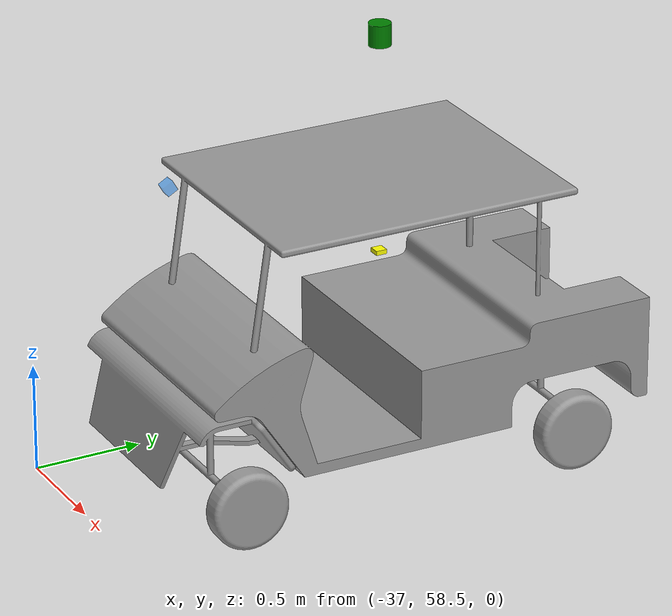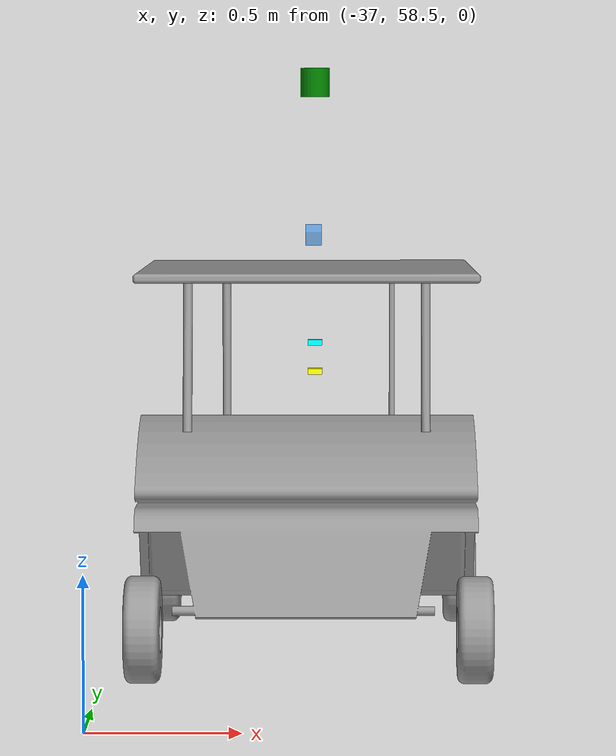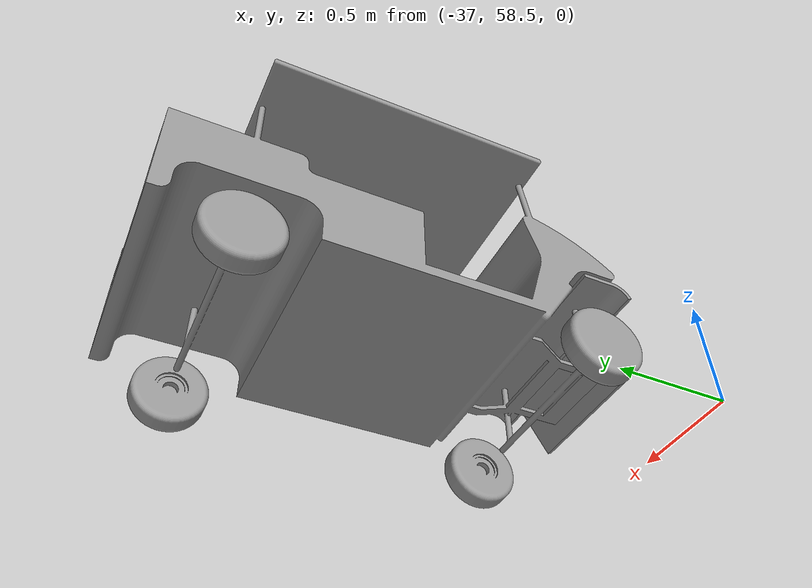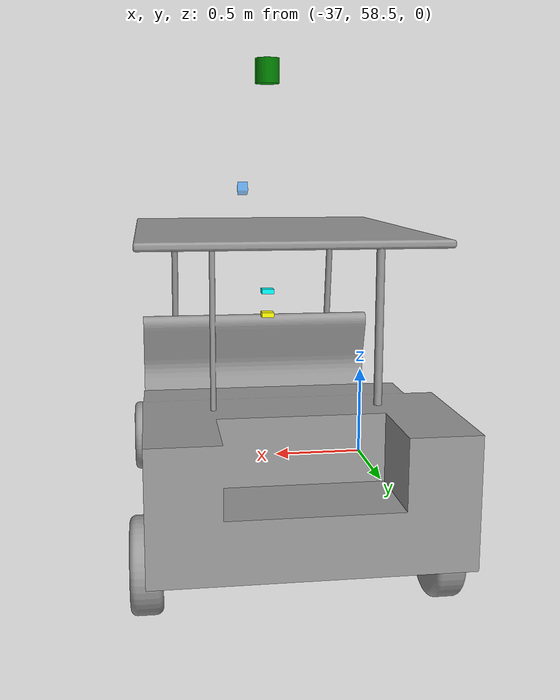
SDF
<?xml version='1.0'?>
<sdf version='1.7'>
  <model name='yoda_car'>
   <pose>-36.282906 59.722023 0.291155 0 0 -1.57854</pose>
    <link name='link_1'>
      <inertial>
        <mass>1</mass>
        <inertia>
          <ixx>0.166667</ixx>
          <ixy>0</ixy>
          <ixz>0</ixz>
          <iyy>0.166667</iyy>
          <iyz>0</iyz>
          <izz>0.166667</izz>
        </inertia>
        <pose>0 0 0 0 -0 0</pose>
      </inertial>
      <pose>-0.094832 0.015297 0.069631 0 -0 0</pose>
      <sensor name='gps_sensor' type='gps'>
        <pose>0 0 0.8 0 -0 0</pose>
        <always_on>1</always_on>
        <update_rate>2</update_rate>
        <gps>
          <position_sensing>
            <horizontal>
              <noise type='gaussian'>
                <mean>0</mean>
                <stddev>0.01</stddev>
              </noise>
            </horizontal>
            <vertical>
              <noise type='gaussian'>
                <mean>0</mean>
                <stddev>0.01</stddev>
              </noise>
            </vertical>
          </position_sensing>
        </gps>
        <plugin name='gps_plugin' filename='libgazebo_ros_gps_sensor.so'>
          <ros>
            <namespace>/yoda</namespace>
            <remapping>~/out:=gps/fix</remapping>
          </ros>
          <frame_name>gps_link</frame_name>
        </plugin>
      </sensor>
      <sensor name="camera_sensor" type="camera">
        <pose>1.0 0 1.2 0 0.523599 0</pose> <!-- Pose burada olmalı -->
        <update_rate>10</update_rate>
        <camera>
          <horizontal_fov>2.094</horizontal_fov> <!-- 120 derece görüş açısı -->
          <image>
            <width>1920</width>
            <height>1080</height>
            <format>R8G8B8</format>
          </image>
          <clip>
            <near>0.02</near>
            <far>100</far>
          </clip>
        </camera>
        <plugin name="ros2_camera_plugin" filename="libgazebo_ros_camera.so">
          <ros>
            <namespace>/yoda</namespace>
            <remapping>image_raw:=/yoda/camera/image_raw</remapping>
          </ros>
          <camera_name>camera</camera_name>
          <frame_name>camera_link</frame_name>
        </plugin>
      </sensor>
      <sensor name='lidar_sensor' type='ray'>
        <pose>0 0 1 0 -0 0</pose>
        <update_rate>10</update_rate>
        <ray>
          <scan>
            <horizontal>
              <samples>360</samples>
              <resolution>1</resolution>
              <min_angle>-3.14159</min_angle>
              <max_angle>3.14159</max_angle>
            </horizontal>
            <vertical>
              <samples>1</samples>
              <min_angle>0</min_angle>
              <max_angle>0</max_angle>
            </vertical>
          </scan>
          <range>
            <min>0.1</min>
            <max>10</max>
            <resolution>0.01</resolution>
            <noise>
              <type>gaussian</type>
              <mean>0.0</mean>
              <stddev>0.02</stddev>
            </noise>
          </range>
        </ray>
        <plugin name='ros2_lidar_plugin' filename='libgazebo_ros_ray_sensor.so'>
          <ros>
            <namespace>/yoda</namespace>
            <remapping>~/out:=lidar/scan</remapping>
          </ros>
          <output_type>sensor_msgs/LaserScan</output_type>
          <frame_name>lidar_link</frame_name>
        </plugin>
      </sensor>
      <sensor name='imu_sensor' type='imu'>
        <pose>0 0 0.7 0 -0 0</pose>
        <always_on>1</always_on>
        <update_rate>2</update_rate>
        <visualize>1</visualize>
        <imu>
          <angular_velocity>
            <noise>
              <type>gaussian</type>
              <mean>0.0</mean>
              <stddev>0.01</stddev>
            </noise>
          </angular_velocity>
          <linear_acceleration>
            <noise>
              <type>gaussian</type>
              <mean>0.0</mean>
              <stddev>0.1</stddev>
            </noise>
          </linear_acceleration>
        </imu>
        <plugin name='imu_plugin' filename='libgazebo_ros_imu_sensor.so'>
          <ros>
            <namespace>/yoda</namespace>
            <remapping>~/out:=imu/data</remapping>
          </ros>
          <frame_name>imu_link</frame_name>
          <output_type>sensor_msgs/Imu</output_type>
        </plugin>
      </sensor>
      <self_collide>0</self_collide>
      <enable_wind>0</enable_wind>
      <kinematic>0</kinematic>
      <visual name='visual'>
        <pose>0 0 0 0 -0 0</pose>
        <geometry>
          <mesh>
            <uri>package://yoda_cpp_package/meshes/arackasa2.dae</uri>
            <scale>1 1 1</scale>
          </mesh>
        </geometry>
        <material>
          <lighting>1</lighting>
          <script>
            <uri>file://media/materials/scripts/gazebo.material</uri>
            <name>Gazebo/Grey</name>
          </script>
          <shader type='pixel'/>
          <emissive>0 0 0 1</emissive>
        </material>
        <transparency>0</transparency>
        <cast_shadows>1</cast_shadows>
      </visual>
      <visual name='camera_visual'>
        <geometry>
          <box>
            <size>0.05 0.05 0.05</size>
          </box>
        </geometry>
        <material>
          <ambient>0 0.5 1 0.5</ambient>
          <shader type='pixel'/>
          <script>
            <name>ModelPreview_1::link_1::camera_visual_MATERIAL_</name>
            <uri>__default__</uri>
          </script>
        </material>
        <pose>1.0 0 1.2 0 0.523599 0</pose>
        <transparency>0</transparency>
        <cast_shadows>1</cast_shadows>
      </visual>
      <visual name='lidar_visual'>
        <pose>0 0 1.7 0 -0 0</pose>
        <geometry>
          <cylinder>
            <radius>0.05</radius>
            <length>0.1</length>
          </cylinder>
        </geometry>
        <material>
          <ambient>0 0.5 0 1</ambient>
          <shader type='pixel'/>
          <script>
            <name>ModelPreview_1::link_1::lidar_visual_MATERIAL_</name>
            <uri>__default__</uri>
          </script>
        </material>
        <transparency>0</transparency>
        <cast_shadows>1</cast_shadows>
      </visual>
      <visual name='gps_visual'>
        <pose>0 0 0.8 0 -0 0</pose>
        <geometry>
          <box>
            <size>0.05 0.05 0.02</size>
          </box>
        </geometry>
        <material>
          <ambient>0 1 1 1</ambient>
          <shader type='pixel'/>
          <script>
            <name>ModelPreview_1::link_1::gps_visual_MATERIAL_</name>
            <uri>__default__</uri>
          </script>
        </material>
        <transparency>0</transparency>
        <cast_shadows>1</cast_shadows>
      </visual>
      <visual name='imu_visual'>
        <pose>0 0 0.7 0 -0 0</pose>
        <geometry>
          <box>
            <size>0.05 0.05 0.02</size>
          </box>
        </geometry>
        <material>
          <ambient>1 1 0 1</ambient>
          <shader type='pixel'/>
          <script>
            <name>ModelPreview_1::link_1::imu_visual_MATERIAL_</name>
            <uri>__default__</uri>
          </script>
        </material>
        <transparency>0</transparency>
        <cast_shadows>1</cast_shadows>
      </visual>
      <collision name='collision'>
        <laser_retro>0</laser_retro>
        <max_contacts>10</max_contacts>
        <pose>0 0 0 0 -0 0</pose>
        <geometry>
          <mesh>
            <uri>package://yoda_cpp_package/meshes/arackasa2.dae</uri>
            <scale>1 1 1</scale>
          </mesh>
        </geometry>
        <surface>
          <friction>
            <ode>
              <mu>1</mu>
              <mu2>1</mu2>
              <fdir1>0 0 0</fdir1>
              <slip1>0</slip1>
              <slip2>0</slip2>
            </ode>
            <torsional>
              <coefficient>1</coefficient>
              <patch_radius>0</patch_radius>
              <surface_radius>0</surface_radius>
              <use_patch_radius>1</use_patch_radius>
              <ode>
                <slip>0</slip>
              </ode>
            </torsional>
          </friction>
          <bounce>
            <restitution_coefficient>0</restitution_coefficient>
            <threshold>1e+06</threshold>
          </bounce>
          <contact>
            <collide_without_contact>0</collide_without_contact>
            <collide_without_contact_bitmask>1</collide_without_contact_bitmask>
            <collide_bitmask>1</collide_bitmask>
            <ode>
              <soft_cfm>0</soft_cfm>
              <soft_erp>0.2</soft_erp>
              <kp>1e+13</kp>
              <kd>1</kd>
              <max_vel>0.3</max_vel>
              <min_depth>0</min_depth>
            </ode>
            <bullet>
              <split_impulse>1</split_impulse>
              <split_impulse_penetration_threshold>-0.01</split_impulse_penetration_threshold>
              <soft_cfm>0</soft_cfm>
              <soft_erp>0.2</soft_erp>
              <kp>1e+13</kp>
              <kd>1</kd>
            </bullet>
          </contact>
        </surface>
      </collision>
    </link>
    <link name='front_left_steering_link'>
      <inertial>
        <mass>0.1</mass>
        <inertia>
          <ixx>0.001</ixx>
          <ixy>0</ixy>
          <ixz>0</ixz>
          <iyy>0.001</iyy>
          <iyz>0</iyz>
          <izz>0.001</izz>
        </inertia>
        <pose>0 0 0 0 -0 0</pose>
      </inertial>
      <pose>0.814094 0.547952 -0.016646 0 -0 0</pose>
      <self_collide>0</self_collide>
      <enable_wind>0</enable_wind>
      <kinematic>0</kinematic>
      <gravity>1</gravity>
    </link>
    <link name='front_right_steering_link'>
      <inertial>
        <mass>0.1</mass>
        <inertia>
          <ixx>0.001</ixx>
          <ixy>0</ixy>
          <ixz>0</ixz>
          <iyy>0.001</iyy>
          <iyz>0</iyz>
          <izz>0.001</izz>
        </inertia>
        <pose>0 0 0 0 -0 0</pose>
      </inertial>
      <pose>0.814094 -0.547952 -0.016646 0 -0 0</pose>
      <self_collide>0</self_collide>
      <enable_wind>0</enable_wind>
      <kinematic>0</kinematic>
      <gravity>1</gravity>
    </link>
    <link name='link_2'>
      <inertial>
        <mass>1</mass>
        <inertia>
          <ixx>0.166667</ixx>
          <ixy>0</ixy>
          <ixz>0</ixz>
          <iyy>0.166667</iyy>
          <iyz>0</iyz>
          <izz>0.166667</izz>
        </inertia>
        <pose>0 0 0 0 -0 0</pose>
      </inertial>
      <pose>-0.772676 -0.547952 -0.016646 0 -0 0</pose>
      <self_collide>0</self_collide>
      <enable_wind>0</enable_wind>
      <kinematic>0</kinematic>
      <gravity>1</gravity>
      <visual name='visual'>
        <pose>0 0 0 0 -0 0</pose>
        <geometry>
          <mesh>
            <uri>package://yoda_cpp_package/meshes/lastik.dae</uri>
            <scale>1 1 1</scale>
          </mesh>
        </geometry>
        <material>
          <lighting>1</lighting>
          <script>
            <uri>file://media/materials/scripts/gazebo.material</uri>
            <name>Gazebo/Grey</name>
          </script>
          <shader type='pixel'>
            <normal_map>__default__</normal_map>
          </shader>
          <emissive>0 0 0 1</emissive>
          <ambient>0.3 0.3 0.3 1</ambient>
          <diffuse>0.7 0.7 0.7 1</diffuse>
          <specular>0.01 0.01 0.01 1</specular>
        </material>
        <transparency>0</transparency>
        <cast_shadows>1</cast_shadows>
      </visual>
      <collision name='collision'>
        <laser_retro>0</laser_retro>
        <max_contacts>10</max_contacts>
        <pose>0 0 0 0 -0 0</pose>
        <geometry>
          <mesh>
            <uri>package://yoda_cpp_package/meshes/lastik.dae</uri>
            <scale>1 1 1</scale>
          </mesh>
        </geometry>
        <surface>
          <friction>
            <ode>
              <mu>1</mu>
              <mu2>1</mu2>
              <fdir1>0 0 0</fdir1>
              <slip1>0</slip1>
              <slip2>0</slip2>
            </ode>
            <torsional>
              <coefficient>1</coefficient>
              <patch_radius>0</patch_radius>
              <surface_radius>0</surface_radius>
              <use_patch_radius>1</use_patch_radius>
              <ode>
                <slip>0</slip>
              </ode>
            </torsional>
          </friction>
          <bounce>
            <restitution_coefficient>0</restitution_coefficient>
            <threshold>1e+06</threshold>
          </bounce>
          <contact>
            <collide_without_contact>0</collide_without_contact>
            <collide_without_contact_bitmask>1</collide_without_contact_bitmask>
            <collide_bitmask>1</collide_bitmask>
            <ode>
              <soft_cfm>0</soft_cfm>
              <soft_erp>0.2</soft_erp>
              <kp>1e+13</kp>
              <kd>1</kd>
              <max_vel>0.3</max_vel>
              <min_depth>0</min_depth>
            </ode>
            <bullet>
              <split_impulse>1</split_impulse>
              <split_impulse_penetration_threshold>-0.01</split_impulse_penetration_threshold>
              <soft_cfm>0</soft_cfm>
              <soft_erp>0.2</soft_erp>
              <kp>1e+13</kp>
              <kd>1</kd>
            </bullet>
          </contact>
        </surface>
      </collision>
    </link>
    <link name='link_2_clone'>
      <inertial>
        <mass>1</mass>
        <inertia>
          <ixx>0.166667</ixx>
          <ixy>0</ixy>
          <ixz>0</ixz>
          <iyy>0.166667</iyy>
          <iyz>0</iyz>
          <izz>0.166667</izz>
        </inertia>
        <pose>0 0 0 0 -0 0</pose>
      </inertial>
      <pose>0.814094 -0.547952 -0.016646 0 -0 0</pose>
      <self_collide>0</self_collide>
      <enable_wind>0</enable_wind>
      <kinematic>0</kinematic>
      <gravity>1</gravity>
      <visual name='visual'>
        <pose>0 0 0 0 -0 0</pose>
        <geometry>
          <mesh>
            <uri>package://yoda_cpp_package/meshes/lastik.dae</uri>
            <scale>1 1 1</scale>
          </mesh>
        </geometry>
        <material>
          <lighting>1</lighting>
          <script>
            <uri>file://media/materials/scripts/gazebo.material</uri>
            <name>Gazebo/Grey</name>
          </script>
          <shader type='pixel'>
            <normal_map>__default__</normal_map>
          </shader>
          <emissive>0 0 0 1</emissive>
          <ambient>0.3 0.3 0.3 1</ambient>
          <diffuse>0.7 0.7 0.7 1</diffuse>
          <specular>0.01 0.01 0.01 1</specular>
        </material>
        <transparency>0</transparency>
        <cast_shadows>1</cast_shadows>
      </visual>
      <collision name='collision'>
        <laser_retro>0</laser_retro>
        <max_contacts>10</max_contacts>
        <pose>0 0 0 0 -0 0</pose>
        <geometry>
          <mesh>
            <uri>package://yoda_cpp_package/meshes/lastik.dae</uri>
            <scale>1 1 1</scale>
          </mesh>
        </geometry>
        <surface>
          <friction>
            <ode>
              <mu>1</mu>
              <mu2>1</mu2>
              <fdir1>0 0 0</fdir1>
              <slip1>0</slip1>
              <slip2>0</slip2>
            </ode>
            <torsional>
              <coefficient>1</coefficient>
              <patch_radius>0</patch_radius>
              <surface_radius>0</surface_radius>
              <use_patch_radius>1</use_patch_radius>
              <ode>
                <slip>0</slip>
              </ode>
            </torsional>
          </friction>
          <bounce>
            <restitution_coefficient>0</restitution_coefficient>
            <threshold>1e+06</threshold>
          </bounce>
          <contact>
            <collide_without_contact>0</collide_without_contact>
            <collide_without_contact_bitmask>1</collide_without_contact_bitmask>
            <collide_bitmask>1</collide_bitmask>
            <ode>
              <soft_cfm>0</soft_cfm>
              <soft_erp>0.2</soft_erp>
              <kp>1e+13</kp>
              <kd>1</kd>
              <max_vel>0.3</max_vel>
              <min_depth>0</min_depth>
            </ode>
            <bullet>
              <split_impulse>1</split_impulse>
              <split_impulse_penetration_threshold>-0.01</split_impulse_penetration_threshold>
              <soft_cfm>0</soft_cfm>
              <soft_erp>0.2</soft_erp>
              <kp>1e+13</kp>
              <kd>1</kd>
            </bullet>
          </contact>
        </surface>
      </collision>
    </link>
    <link name='link_2_clone_1'>
      <inertial>
        <mass>1</mass>
        <inertia>
          <ixx>0.166667</ixx>
          <ixy>0</ixy>
          <ixz>0</ixz>
          <iyy>0.166667</iyy>
          <iyz>0</iyz>
          <izz>0.166667</izz>
        </inertia>
        <pose>0 0 0 0 -0 0</pose>
      </inertial>
      <pose>-0.772676 0.547952 -0.016646 0 -0 3.14159</pose>
      <self_collide>0</self_collide>
      <enable_wind>0</enable_wind>
      <kinematic>0</kinematic>
      <gravity>1</gravity>
      <visual name='visual'>
        <pose>0 0 0 0 -0 0</pose>
        <geometry>
          <mesh>
            <uri>package://yoda_cpp_package/meshes/lastik.dae</uri>
            <scale>1 1 1</scale>
          </mesh>
        </geometry>
        <material>
          <lighting>1</lighting>
          <script>
            <uri>file://media/materials/scripts/gazebo.material</uri>
            <name>Gazebo/Grey</name>
          </script>
          <shader type='pixel'>
            <normal_map>__default__</normal_map>
          </shader>
          <emissive>0 0 0 1</emissive>
          <ambient>0.3 0.3 0.3 1</ambient>
          <diffuse>0.7 0.7 0.7 1</diffuse>
          <specular>0.01 0.01 0.01 1</specular>
        </material>
        <transparency>0</transparency>
        <cast_shadows>1</cast_shadows>
      </visual>
      <collision name='collision'>
        <laser_retro>0</laser_retro>
        <max_contacts>10</max_contacts>
        <pose>0 0 0 0 -0 0</pose>
        <geometry>
          <mesh>
            <uri>package://yoda_cpp_package/meshes/lastik.dae</uri>
            <scale>1 1 1</scale>
          </mesh>
        </geometry>
        <surface>
          <friction>
            <ode>
              <mu>1</mu>
              <mu2>1</mu2>
              <fdir1>0 0 0</fdir1>
              <slip1>0</slip1>
              <slip2>0</slip2>
            </ode>
            <torsional>
              <coefficient>1</coefficient>
              <patch_radius>0</patch_radius>
              <surface_radius>0</surface_radius>
              <use_patch_radius>1</use_patch_radius>
              <ode>
                <slip>0</slip>
              </ode>
            </torsional>
          </friction>
          <bounce>
            <restitution_coefficient>0</restitution_coefficient>
            <threshold>1e+06</threshold>
          </bounce>
          <contact>
            <collide_without_contact>0</collide_without_contact>
            <collide_without_contact_bitmask>1</collide_without_contact_bitmask>
            <collide_bitmask>1</collide_bitmask>
            <ode>
              <soft_cfm>0</soft_cfm>
              <soft_erp>0.2</soft_erp>
              <kp>1e+13</kp>
              <kd>1</kd>
              <max_vel>0.3</max_vel>
              <min_depth>0</min_depth>
            </ode>
            <bullet>
              <split_impulse>1</split_impulse>
              <split_impulse_penetration_threshold>-0.01</split_impulse_penetration_threshold>
              <soft_cfm>0</soft_cfm>
              <soft_erp>0.2</soft_erp>
              <kp>1e+13</kp>
              <kd>1</kd>
            </bullet>
          </contact>
        </surface>
      </collision>
    </link>
    <link name='link_2_clone_1_clone'>
      <inertial>
        <mass>1</mass>
        <inertia>
          <ixx>0.166667</ixx>
          <ixy>0</ixy>
          <ixz>0</ixz>
          <iyy>0.166667</iyy>
          <iyz>0</iyz>
          <izz>0.166667</izz>
        </inertia>
        <pose>0 0 0 0 -0 0</pose>
      </inertial>
      <pose>0.814094 0.547952 -0.016646 0 -0 3.14159</pose>
      <self_collide>0</self_collide>
      <enable_wind>0</enable_wind>
      <kinematic>0</kinematic>
      <gravity>1</gravity>
      <visual name='ModelPreview_1::link_2_clone_1_clone::visual_1'>
        <pose>0 0 0 0 -0 0</pose>
        <geometry>
          <mesh>
            <uri>package://yoda_cpp_package/meshes/lastik.dae</uri>
            <scale>1 1 1</scale>
          </mesh>
        </geometry>
        <material>
          <lighting>1</lighting>
          <script>
            <uri>file://media/materials/scripts/gazebo.material</uri>
            <name>Gazebo/Grey</name>
          </script>
          <shader type='pixel'>
            <normal_map>__default__</normal_map>
          </shader>
          <emissive>0 0 0 1</emissive>
          <ambient>0.3 0.3 0.3 1</ambient>
          <diffuse>0.7 0.7 0.7 1</diffuse>
          <specular>0.01 0.01 0.01 1</specular>
        </material>
        <transparency>0</transparency>
        <cast_shadows>1</cast_shadows>
      </visual>
      <visual name='visual'>
        <pose>0 0 0 0 -0 0</pose>
        <geometry>
          <mesh>
            <uri>package://yoda_cpp_package/meshes/lastik.dae</uri>
            <scale>1 1 1</scale>
          </mesh>
        </geometry>
        <material>
          <lighting>1</lighting>
          <script>
            <uri>file://media/materials/scripts/gazebo.material</uri>
            <name>Gazebo/Grey</name>
          </script>
          <shader type='pixel'>
            <normal_map>__default__</normal_map>
          </shader>
          <emissive>0 0 0 1</emissive>
          <ambient>0.3 0.3 0.3 1</ambient>
          <diffuse>0.7 0.7 0.7 1</diffuse>
          <specular>0.01 0.01 0.01 1</specular>
        </material>
        <transparency>0</transparency>
        <cast_shadows>1</cast_shadows>
      </visual>
      <collision name='collision'>
        <laser_retro>0</laser_retro>
        <max_contacts>10</max_contacts>
        <pose>0 0 0 0 -0 0</pose>
        <geometry>
          <mesh>
            <uri>package://yoda_cpp_package/meshes/lastik.dae</uri>
            <scale>1 1 1</scale>
          </mesh>
        </geometry>
        <surface>
          <friction>
            <ode>
              <mu>1</mu>
              <mu2>1</mu2>
              <fdir1>0 0 0</fdir1>
              <slip1>0</slip1>
              <slip2>0</slip2>
            </ode>
            <torsional>
              <coefficient>1</coefficient>
              <patch_radius>0</patch_radius>
              <surface_radius>0</surface_radius>
              <use_patch_radius>1</use_patch_radius>
              <ode>
                <slip>0</slip>
              </ode>
            </torsional>
          </friction>
          <bounce>
            <restitution_coefficient>0</restitution_coefficient>
            <threshold>1e+06</threshold>
          </bounce>
          <contact>
            <collide_without_contact>0</collide_without_contact>
            <collide_without_contact_bitmask>1</collide_without_contact_bitmask>
            <collide_bitmask>1</collide_bitmask>
            <ode>
              <soft_cfm>0</soft_cfm>
              <soft_erp>0.2</soft_erp>
              <kp>1e+13</kp>
              <kd>1</kd>
              <max_vel>0.3</max_vel>
              <min_depth>0</min_depth>
            </ode>
            <bullet>
              <split_impulse>1</split_impulse>
              <split_impulse_penetration_threshold>-0.01</split_impulse_penetration_threshold>
              <soft_cfm>0</soft_cfm>
              <soft_erp>0.2</soft_erp>
              <kp>1e+13</kp>
              <kd>1</kd>
            </bullet>
          </contact>
        </surface>
      </collision>
    </link>
    <joint name='front_left_spin_joint' type='revolute'>
      <parent>front_left_steering_link</parent>
      <child>link_2_clone_1_clone</child>
      <pose>0 0 0 0 -0 0</pose>
      <axis>
        <xyz>0 -1 0</xyz>
        <limit>
          <lower>-1.79769e+308</lower>
          <upper>1.79769e+308</upper>
          <effort>50</effort>
          <velocity>20</velocity>
        </limit>
        <dynamics>
          <spring_reference>0</spring_reference>
          <spring_stiffness>0</spring_stiffness>
          <damping>0.1</damping>
          <friction>0</friction>
        </dynamics>
      </axis>
      <physics>
        <ode>
          <limit>
            <cfm>0</cfm>
            <erp>0.2</erp>
          </limit>
          <suspension>
            <cfm>0</cfm>
            <erp>0.2</erp>
          </suspension>
        </ode>
      </physics>
    </joint>
    <joint name='front_left_steer_joint' type='revolute'>
      <parent>link_1</parent>
      <child>front_left_steering_link</child>
      <pose>0 0 0 0 -0 0</pose>
      <axis>
        <xyz>0 0 1</xyz>
        <limit>
          <lower>-0.7</lower>
          <upper>0.7</upper>
          <effort>50</effort>
          <velocity>1</velocity>
        </limit>
        <dynamics>
          <spring_reference>0</spring_reference>
          <spring_stiffness>10</spring_stiffness>
          <damping>0.1</damping>
          <friction>0</friction>
        </dynamics>
      </axis>
      <physics>
        <ode>
          <limit>
            <cfm>0</cfm>
            <erp>0.2</erp>
          </limit>
          <suspension>
            <cfm>0</cfm>
            <erp>0.2</erp>
          </suspension>
        </ode>
      </physics>
    </joint>
	<sensor name="front_left_encoder" type="joint_velocity">
	  <update_rate>100</update_rate>
	  <topic>/yoda/encoder/speed</topic>
	  <noise type="gaussian">
		<mean>0.0</mean> <!-- Noise mean value -->
		<stddev>0.02</stddev> <!-- Noise standard deviation -->
	  </noise>
	  <joint>
		<name>front_right_steer_joint</name>
	  </joint>
	</sensor>

    <joint name='front_right_spin_joint' type='revolute'>
      <parent>front_right_steering_link</parent>
      <child>link_2_clone</child>
      <pose>0 0 0 0 -0 0</pose>
      <axis>
        <xyz>0 1 0</xyz>
        <limit>
          <lower>-1.79769e+308</lower>
          <upper>1.79769e+308</upper>
          <effort>50</effort>
          <velocity>20</velocity>
        </limit>
        <dynamics>
          <spring_reference>0</spring_reference>
          <spring_stiffness>0</spring_stiffness>
          <damping>0.1</damping>
          <friction>0</friction>
        </dynamics>
      </axis>
      <physics>
        <ode>
          <limit>
            <cfm>0</cfm>
            <erp>0.2</erp>
          </limit>
          <suspension>
            <cfm>0</cfm>
            <erp>0.2</erp>
          </suspension>
        </ode>
      </physics>
    </joint>
    <joint name='front_right_steer_joint' type='revolute'>
      <parent>link_1</parent>
      <child>front_right_steering_link</child>
      <pose>0 0 0 0 -0 0</pose>
      <axis>
        <xyz>0 0 1</xyz>
        <limit>
          <lower>-0.7</lower>
          <upper>0.7</upper>
          <effort>50</effort>
          <velocity>1</velocity>
        </limit>
        <dynamics>
          <spring_reference>0</spring_reference>
          <spring_stiffness>10</spring_stiffness>
          <damping>0.1</damping>
          <friction>0</friction>
        </dynamics>
      </axis>
      <physics>
        <ode>
          <limit>
            <cfm>0</cfm>
            <erp>0.2</erp>
          </limit>
          <suspension>
            <cfm>0</cfm>
            <erp>0.2</erp>
          </suspension>
        </ode>
      </physics>
    </joint>
	<sensor name="front_right_encoder" type="joint_velocity">
	  <update_rate>100</update_rate>
	  <topic>/yoda/encoder/speed</topic>
	  <noise type="gaussian">
		<mean>0.0</mean> <!-- Noise mean value -->
		<stddev>0.02</stddev> <!-- Noise standard deviation -->
	  </noise>
	  <joint>
		<name>front_right_steer_joint</name>
	  </joint>
	</sensor>
    <joint name='link_1_JOINT_2' type='revolute'>
      <parent>link_1</parent>
      <child>link_2_clone_1</child>
      <pose>0 0 0 0 -0 0</pose>
      <axis>
        <xyz>0 1 0</xyz>
        <limit>
          <lower>-1.79769e+308</lower>
          <upper>1.79769e+308</upper>
          <effort>200</effort>
          <velocity>20</velocity>
        </limit>
        <dynamics>
          <spring_reference>0</spring_reference>
          <spring_stiffness>0</spring_stiffness>
          <damping>0.1</damping>
          <friction>0</friction>
        </dynamics>
      </axis>
      <physics>
        <ode>
          <limit>
            <cfm>0</cfm>
            <erp>0.2</erp>
          </limit>
          <suspension>
            <cfm>0</cfm>
            <erp>0.2</erp>
          </suspension>
        </ode>
      </physics>
    </joint>
    <joint name='link_1_JOINT_3' type='revolute'>
      <parent>link_1</parent>
      <child>link_2</child>
      <pose>0 0 0 0 -0 0</pose>
      <axis>
        <xyz>0 -1 0</xyz>
        <limit>
          <lower>-1.79769e+308</lower>
          <upper>1.79769e+308</upper>
          <effort>200</effort>
          <velocity>20</velocity>
        </limit>
        <dynamics>
          <spring_reference>0</spring_reference>
          <spring_stiffness>0</spring_stiffness>
          <damping>0.1</damping>
          <friction>0</friction>
        </dynamics>
      </axis>
      <physics>
        <ode>
          <limit>
            <cfm>0</cfm>
            <erp>0.2</erp>
          </limit>
          <suspension>
            <cfm>0</cfm>
            <erp>0.2</erp>
          </suspension>
        </ode>
      </physics>
    </joint>
    <static>0</static>
    <allow_auto_disable>1</allow_auto_disable>
    <plugin name='planar_move_plugin' filename='libgazebo_ros_planar_move.so'>
      <ros>
        <namespace>/yoda</namespace>

      </ros>
      <commandTopic>/cmd_vel</commandTopic>
      <odometryTopic>/odom</odometryTopic>
      <odometryFrame>odom</odometryFrame>
      <robotBaseFrame>base_link</robotBaseFrame>
    </plugin>
  </model>
</sdf>
